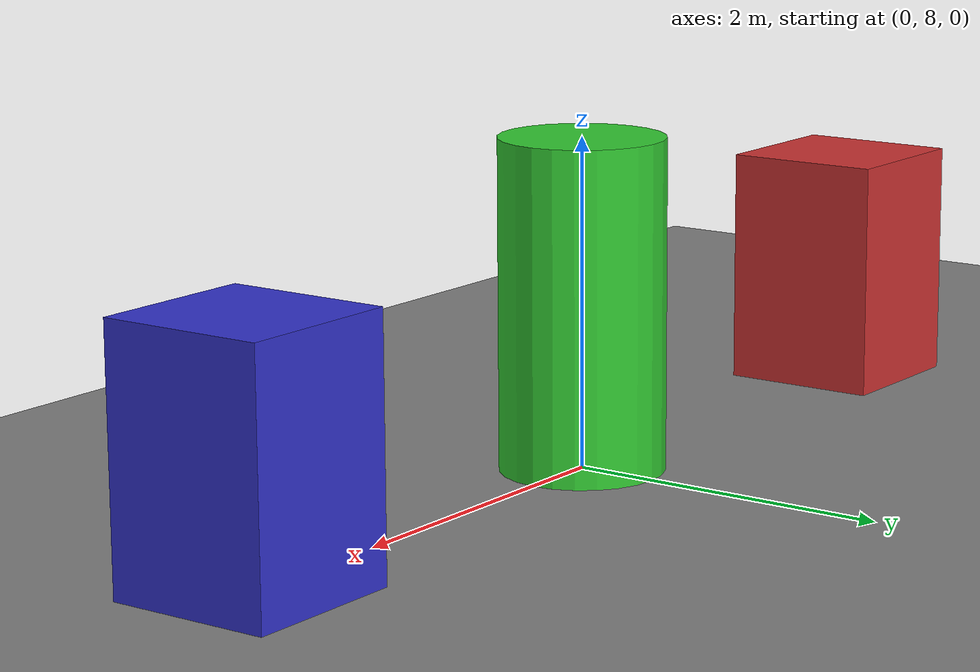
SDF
<?xml version="1.0"?>
<sdf version="1.9">
  <world name="depthcam_derisk">

    <physics name="default" type="ignored">
      <max_step_size>0.004</max_step_size>
      <real_time_factor>1.0</real_time_factor>
      <real_time_update_rate>250</real_time_update_rate>
    </physics>

    <plugin filename="gz-sim-physics-system"
            name="gz::sim::systems::Physics"/>
    <plugin filename="gz-sim-sensors-system"
            name="gz::sim::systems::Sensors">
      <render_engine>ogre2</render_engine>
    </plugin>
    <plugin filename="gz-sim-scene-broadcaster-system"
            name="gz::sim::systems::SceneBroadcaster"/>

    <scene>
      <ambient>0.4 0.4 0.4 1</ambient>
      <background>0.7 0.8 0.9 1</background>
    </scene>

    <light type="directional" name="sun">
      <cast_shadows>true</cast_shadows>
      <pose>0 0 10 0 0 0</pose>
      <diffuse>1 1 1 1</diffuse>
      <specular>0.3 0.3 0.3 1</specular>
      <direction>-0.5 0.3 -1</direction>
    </light>

    <model name="ground_plane">
      <static>true</static>
      <link name="link">
        <collision name="collision">
          <geometry><plane><normal>0 0 1</normal><size>100 100</size></plane></geometry>
        </collision>
        <visual name="visual">
          <geometry><plane><normal>0 0 1</normal><size>100 100</size></plane></geometry>
          <material><ambient>0.3 0.3 0.3 1</ambient><diffuse>0.5 0.5 0.5 1</diffuse></material>
        </visual>
      </link>
    </model>

    <!-- The same cylinder the plugin showed ghosted, plus two flanking boxes,
         all ~8 m ahead in +Y so a single forward-facing camera frames them. -->
    <model name="cyl_mid">
      <static>true</static>
      <pose>0 8 1 0 0 0</pose>
      <link name="link">
        <collision name="c"><geometry><cylinder><radius>0.5</radius><length>2</length></cylinder></geometry></collision>
        <visual name="v"><geometry><cylinder><radius>0.5</radius><length>2</length></cylinder></geometry>
          <material><diffuse>0.2 0.8 0.2 1</diffuse></material></visual>
      </link>
    </model>

    <model name="box_left">
      <static>true</static>
      <pose>-3 8 0.75 0 0 0</pose>
      <link name="link">
        <collision name="c"><geometry><box><size>1 1 1.5</size></box></geometry></collision>
        <visual name="v"><geometry><box><size>1 1 1.5</size></box></geometry>
          <material><diffuse>0.8 0.2 0.2 1</diffuse></material></visual>
      </link>
    </model>

    <model name="box_right">
      <static>true</static>
      <pose>3 8 0.75 0 0 0</pose>
      <link name="link">
        <collision name="c"><geometry><box><size>1 1 1.5</size></box></geometry></collision>
        <visual name="v"><geometry><box><size>1 1 1.5</size></box></geometry>
          <material><diffuse>0.2 0.2 0.8 1</diffuse></material></visual>
      </link>
    </model>

    <model name="depthcam_derisk">
      <static>true</static>
      <pose>0 0 1 0 0 1.5708</pose>
      <link name="link">
        <sensor name="depthcam" type="depth_camera">
          <always_on>1</always_on>
          <update_rate>10</update_rate>
          <visualize>true</visualize>
          <topic>depthcam</topic>
          <camera>
            <horizontal_fov>1.4</horizontal_fov>
            <image><width>512</width><height>512</height><format>R_FLOAT32</format></image>
            <clip><near>0.1</near><far>120.0</far></clip>
          </camera>
        </sensor>
      </link>
    </model>

  </world>
</sdf>
